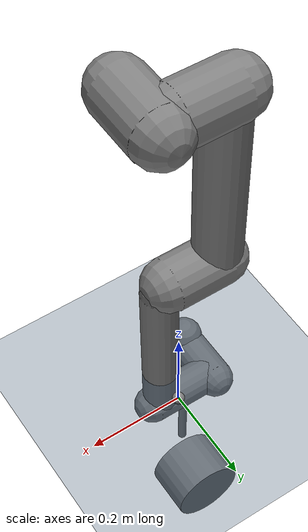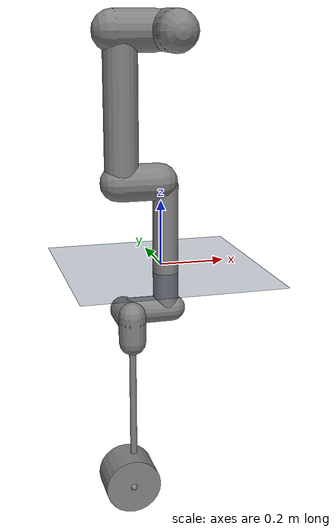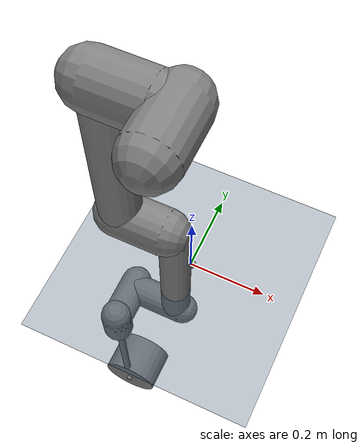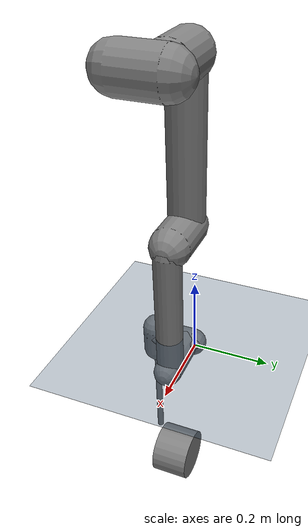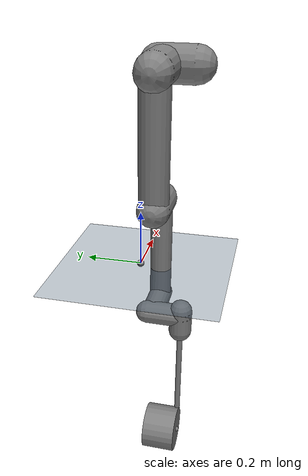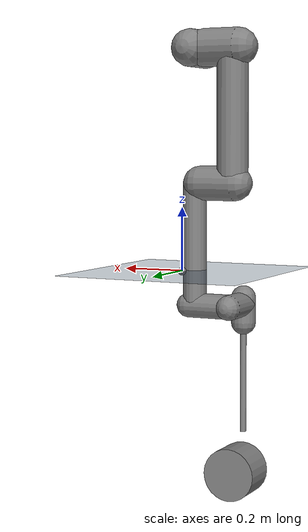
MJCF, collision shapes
<mujoco model="ur5e_scene">
  <include file="ur5e.xml"/>
  <statistic center="0 0 0.1" extent="0.8"/>

<!-- 场景材料、贴图设置 -->
  <visual>
    <map force="0.1" zfar="30"/>
    <rgba haze="0.15 0.25 0.35 1"/>
    <quality shadowsize="2048"/>
    <global offwidth="800" offheight="800"/>
  </visual>

  <default>
    <default class="ur5e_scene">
      <default class="visual_ball">
        <geom type="mesh" contype="0" conaffinity="0" group="2"/>
        <default class="ball">
            <geom material="ball"/>
        </default>
      </default>

      <default class="collision2">
          <geom contype="1" conaffinity="15" group="3" solref="0.001 0.62"  solimp="0.9 0.95"/>
      </default>
    </default>
  </default>

<!-- 加载诸如网格文件、贴图文件的资源，定义颜色等-->
  <asset>

    <texture type="skybox" builtin="gradient" rgb1="0.3 0.5 0.7" rgb2="0 0 0" width="512" height="3072"/>
    <texture type="2d" name="groundplane" builtin="checker" mark="edge"
      rgb1="0.2 0.3 0.4" rgb2="0.1 0.2 0.3"
      markrgb="0.8 0.8 0.8" width="300" height="300"/>
    <material name="groundplane" texture="groundplane" texuniform="true" texrepeat="5 5" reflectance="0.2"/>
    <material name="ball" specular="0" shininess="0.25" rgba="1.0 0.9 0.0 1"/>
    <mesh   name="badminton"                          file="Shutt.STL" />
  </asset>

  <worldbody>

    <light pos="0 0 1.5" dir="0 0 -1" directional="true" castshadow="false"/>
    <geom name="floor" pos="0 0 0" size="0 0 .125" type="plane" contype="1" conaffinity="3" material="groundplane" solimp="0.005 1"  condim="6" friction="0.4 0.6 0.8"/>
    <body name="Shutt" pos="0 0.0 0.0" childclass="ur5e_scene" euler=" 0 0 0">
        <geom class="ball" mesh="badminton"/>
        <!-- friction:  切向（两个轴相同）、扭转、滚动（两个轴向相同）-->
        <geom class="collision2" name="shutt" type="sphere" size="0.013" pos="0 0.0 0" friction="0.4 0.6 0.8" condim="6"/>
        <site name="ShuttIMU" size="0.01" pos="0 0.0 0" group="0"/>
        <inertial pos="0.0 0.0 0.0" mass="0.006"  diaginertia="0.000001  0.000001  0.000001"/>
        <joint name="freeball"  pos="0 0 0" type="free" damping="0.0"/>

    </body>

  </worldbody>

  <!--
        这里定义了和传感器有关的内容：在site位置放置传感器
  -->
  <sensor>
      <accelerometer name="ShuttAcc" site="ShuttIMU" noise="1e-2"/>
      <gyro name="ShuttGyro" site="ShuttIMU" noise="5e-4"/>
      <velocimeter name="ShuttVel" site="ShuttIMU" noise="5e-4"/>
      <touch name="ShuttTouch" site="ShuttIMU"/>
  </sensor>

</mujoco>

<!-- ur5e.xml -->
<mujoco model="ur5e">
  <compiler angle="radian" meshdir="meshes" autolimits="true"/>
  <option timestep="0.001"/>

  <default>
    <default class="ur5e">
      <material specular="0.5" shininess="0.25"/>
      <default class="visual">
        <geom type="mesh" contype="0" conaffinity="0" group="2"/>
      </default>
      <default class="collision">
        <geom type="capsule" group="3"/>
        <default class="eef_collision">
          <geom type="cylinder"/>
        </default>
      </default>
      <default class="racket_collision">
        <!-- 1000 and 0111 -->
        <geom contype="8" conaffinity="7"  group="3"/>
      </default>
      <default class="Shoulder">
        <motor ctrlrange="-1.485 1.485" user="3030 2000 1.87e-8"/>
      </default>
      <default class="Wrist">
        <motor ctrlrange="-0.277 0.277" user="3030 2000 2.07e-5"/>
      </default>
    </default>
  </default>

  <asset>
    <material class="ur5e" name="black" rgba="0.033 0.033 0.033 1"/>
    <material class="ur5e" name="jointgray" rgba="0.278 0.278 0.278 1"/>
    <material class="ur5e" name="linkgray" rgba="0.82 0.82 0.82 1"/>
    <material class="ur5e" name="urblue" rgba="0.49 0.678 0.8 1"/>

    <mesh file="base_0.obj"/>
    <mesh file="base_1.obj"/>
    <mesh file="shoulder_0.obj"/>
    <mesh file="shoulder_1.obj"/>
    <mesh file="shoulder_2.obj"/>
    <mesh file="upperarm_0.obj"/>
    <mesh file="upperarm_1.obj"/>
    <mesh file="upperarm_2.obj"/>
    <mesh file="upperarm_3.obj"/>
    <mesh file="forearm_0.obj"/>
    <mesh file="forearm_1.obj"/>
    <mesh file="forearm_2.obj"/>
    <mesh file="forearm_3.obj"/>
    <mesh file="wrist1_0.obj"/>
    <mesh file="wrist1_1.obj"/>
    <mesh file="wrist1_2.obj"/>
    <mesh file="wrist2_0.obj"/>
    <mesh file="wrist2_1.obj"/>
    <mesh file="wrist2_2.obj"/>
    <mesh file="wrist3.obj"/>
    <mesh file="racket.STL"/>
  </asset>

  <worldbody>
    <light name="spotlight" mode="track" pos="0 0 3" dir="0 0 -1"  castshadow="false"/>
    <light name="front" mode="track" pos="3 0.2 1.5" dir="-1 0 0" castshadow="false"/>
    <body name="base" pos="0 -0.24 0.7" quat="1 -1 0 0" childclass="ur5e">
      <inertial mass="4.0" pos="0 0 0" diaginertia="0.00443333156 0.00443333156 0.0072"/>
      <geom mesh="base_0" material="black" class="visual"/>
      <geom mesh="base_1" material="jointgray" class="visual"/>
      <body name="shoulder_link" pos="0 0 0.163" quat="1 0 0 1">
        <inertial mass="3.7" pos="0 0 0" diaginertia="0.0102675 0.0102675 0.00666"/>
        <joint name="ShoulderRoll" axis="0 0 1" range="-3.1415 3.1415"  limited="true"/>
        <geom mesh="shoulder_0" material="urblue" class="visual"/>
        <geom mesh="shoulder_1" material="black" class="visual"/>
        <geom mesh="shoulder_2" material="jointgray" class="visual"/>
        <geom class="collision" size="0.06 0.06" pos="0 0 -0.04"/>
        <body name="upper_arm_link" pos="0 0.138 0" quat="1 0 1 0">
          <inertial mass="8.393" pos="0 0 0.2125" diaginertia="0.133886 0.133886 0.0151074"/>
          <joint name="ShoulderPitch" axis="0 -1 0" range="-3.1415 4.8"  limited="true"/>
          <geom mesh="upperarm_0" material="linkgray" class="visual"/>
          <geom mesh="upperarm_1" material="black" class="visual"/>
          <geom mesh="upperarm_2" material="jointgray" class="visual"/>
          <geom mesh="upperarm_3" material="urblue" class="visual"/>
          <geom class="collision" pos="0 -0.04 0" quat="1 1 0 0" size="0.06 0.06"/>
          <geom class="collision" size="0.05 0.2" pos="0 0 0.2"/>
          <body name="forearm_link" pos="0 -0.131 0.425">
            <inertial mass="2.275" pos="0 0 0.196" diaginertia="0.0311796 0.0311796 0.004095"/>
            <joint name="Elbow" axis="0 -1 0" range="-3.1415 3.14"  limited="true"/>
            <geom mesh="forearm_0" material="urblue" class="visual"/>
            <geom mesh="forearm_1" material="linkgray" class="visual"/>
            <geom mesh="forearm_2" material="black" class="visual"/>
            <geom mesh="forearm_3" material="jointgray" class="visual"/>
            <geom class="collision" pos="0 0.08 0" quat="1 1 0 0" size="0.055 0.06"/>
            <geom class="collision" size="0.038 0.19" pos="0 0 0.2"/>
            <body name="wrist_1_link" pos="0 0 0.392" quat="1 0 1 0">
              <inertial mass="1.219" pos="0 0.127 0" diaginertia="0.0025599 0.0025599 0.0021942"/>
              <joint name="wrist_1" axis="0 -1 0" range="-3.1415 3.14"  limited="true"/>
              <geom mesh="wrist1_0" material="black" class="visual"/>
              <geom mesh="wrist1_1" material="urblue" class="visual"/>
              <geom mesh="wrist1_2" material="jointgray" class="visual"/>
              <geom class="collision" pos="0 0.05 0" quat="1 1 0 0" size="0.04 0.07"/>
              <body name="wrist_2_link" pos="0 0.127 0" quat="1 0 0 1">
                <inertial mass="1.219" pos="0 0 0.1" diaginertia="0.0025599 0.0025599 0.0021942"/>
                <joint name="wrist_2" axis="0 0 1" range="-3.1415 3.14"  limited="true"/>
                <geom mesh="wrist2_0" material="black" class="visual"/>
                <geom mesh="wrist2_1" material="urblue" class="visual"/>
                <geom mesh="wrist2_2" material="jointgray" class="visual"/>
                <geom class="collision" size="0.04 0.06" pos="0 0 0.04"/>
                <geom class="collision" pos="0 0.02 0.1" quat="1 1 0 0" size="0.04 0.04"/>
                <body name="wrist_3_link" pos="0 0 0.1" quat="1 1 0 0">

                  <joint name="wrist_3" axis="0 -1 0" range="-3.1415 3.14"  limited="true"/>
                  <geom material="linkgray" mesh="racket" class="visual" pos = "0 0 0"/>
                  <geom class="racket_collision" name="racket1" type="cylinder" size="0.01 0.2" pos="0.0 0.0 -0.22"/>
                  <site name="HandIMU" size="0.01" pos="0 0 0.0" group="0"/>
                  <site name="EndIMU" size="0.01" pos="0 0 -0.54" group="0"/>
                  <geom class="racket_collision" name="racket2" type="cylinder" size="0.085 0.06" pos="0 -0.06 -0.54" euler="1.57 0 0"  friction="0.8 0.8 0.8"/>
                  <inertial pos="0.0 0.0 -0.35" mass="0.09"  diaginertia="0.004425  0.004448  0.000227"/>
                </body>
              </body>
            </body>
          </body>
        </body>
      </body>
    </body>
  </worldbody>

  <actuator>
    <motor class="Shoulder" name="ShoulderRoll" joint="ShoulderRoll" gear="101"/>
    <motor class="Shoulder" name="ShoulderPitch" joint="ShoulderPitch" gear="101"/>
    <motor class="Shoulder" name="Elbow" joint="Elbow" gear="101"/>
    <motor class="Wrist" name="wrist_1" joint="wrist_1" gear="101"/>
    <motor class="Wrist" name="wrist_2" joint="wrist_2" gear="101"/>
    <motor class="Wrist" name="wrist_3" joint="wrist_3" gear="101"/>

  </actuator>

  <sensor>
    <accelerometer name="HnadAcc" site="HandIMU" noise="1e-2"/>
    <gyro name="HandGyro" site="HandIMU" noise="5e-4"/>
    <velocimeter name="HandVel" site="HandIMU" noise="5e-4"/>

    <accelerometer name="EndAcc" site="EndIMU" noise="1e-2"/>
    <gyro name="EndGyro" site="EndIMU" noise="5e-4"/>
    <velocimeter name="EndVel" site="EndIMU" noise="5e-4"/>
    <touch name="EndTouch" site="EndIMU"/>
  </sensor>

</mujoco>
